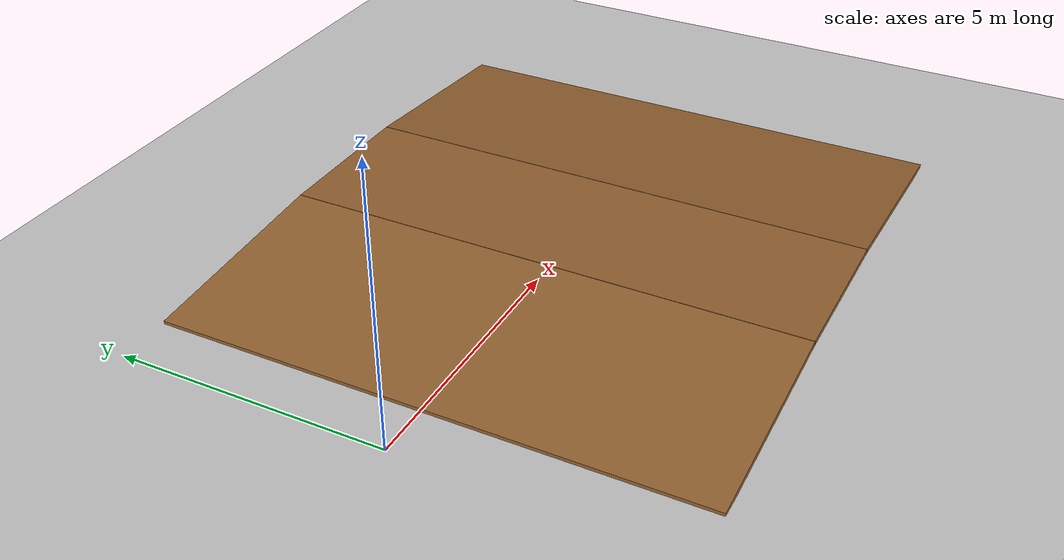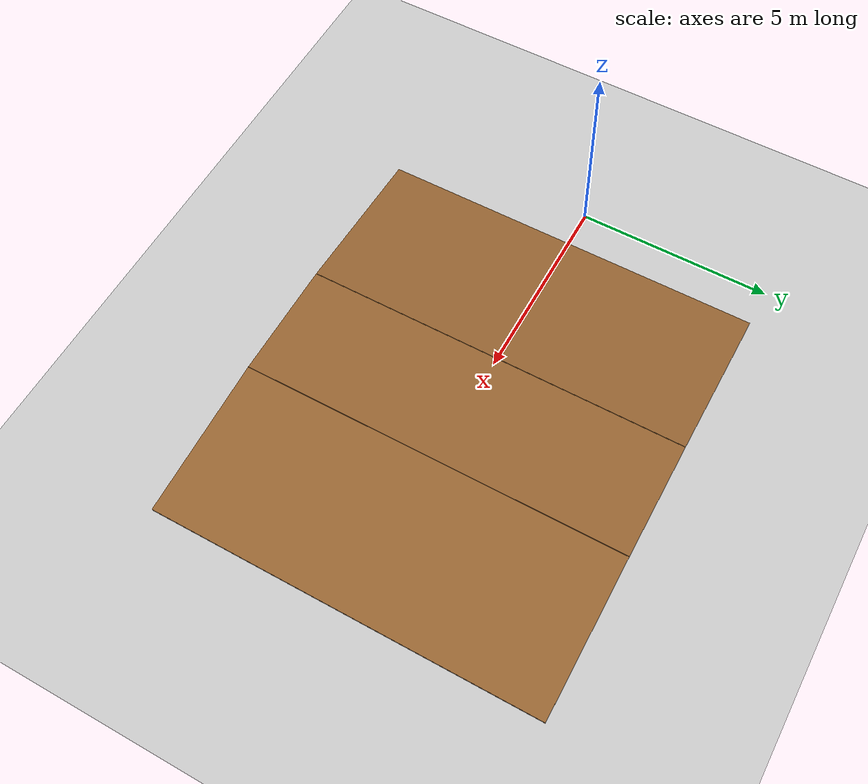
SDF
<?xml version="1.0" ?>
<sdf version="1.8">
  <world name="hilly_world">
    <physics name="1ms" type="ignored">
      <max_step_size>0.001</max_step_size>
      <real_time_factor>1.0</real_time_factor>
    </physics>

    <plugin filename="gz-sim-physics-system" name="gz::sim::systems::Physics"></plugin>
    <plugin filename="gz-sim-user-commands-system" name="gz::sim::systems::UserCommands"></plugin>
    <plugin filename="gz-sim-scene-broadcaster-system" name="gz::sim::systems::SceneBroadcaster"></plugin>
    <plugin filename="gz-sim-sensors-system" name="gz::sim::systems::Sensors">
      <render_engine>ogre2</render_engine>
    </plugin>
    <plugin filename="gz-sim-contact-system" name="gz::sim::systems::Contact"></plugin>

    <scene>
      <ambient>1.0 1.0 1.0 1</ambient>
      <background>0.8 0.9 1.0 1</background>
      <shadows>true</shadows>
    </scene>

    <light type="directional" name="sun">
      <pose>0 0 10 0 0 0</pose>
      <diffuse>0.8 0.8 0.8 1</diffuse>
      <specular>0.2 0.2 0.2 1</specular>
      <cast_shadows>true</cast_shadows>
    </light>

    <model name="ground_plane">
      <static>true</static>
      <link name="link">
        <collision name="collision"><geometry><plane><normal>0 0 1</normal><size>100 100</size></plane></geometry></collision>
        <visual name="visual">
          <geometry><plane><normal>0 0 1</normal><size>100 100</size></plane></geometry>
          <material>
            <ambient>0.8 0.8 0.8 1</ambient>
            <diffuse>0.8 0.8 0.8 1</diffuse>
            <specular>0.1 0.1 0.1 1</specular>
          </material>
        </visual>
      </link>
    </model>

    <model name="ramp_up">
      <static>true</static>
      <pose>3.0 0 0.16 0 -0.08 0</pose>
      <link name="link">
        <collision name="collision"><geometry><box><size>4 10 0.1</size></box></geometry></collision>
        <visual name="visual">
          <geometry><box><size>4 10 0.1</size></box></geometry>
          <material>
            <ambient>0.6 0.4 0.2 1</ambient>
            <diffuse>0.6 0.4 0.2 1</diffuse>
          </material>
        </visual>
      </link>
    </model>

    <model name="hill_top">
      <static>true</static>
      <pose>6.5 0 0.32 0 0 0</pose>
      <link name="link">
        <collision name="collision"><geometry><box><size>3 10 0.1</size></box></geometry></collision>
        <visual name="visual">
          <geometry><box><size>3 10 0.1</size></box></geometry>
          <material>
            <ambient>0.6 0.4 0.2 1</ambient>
            <diffuse>0.6 0.4 0.2 1</diffuse>
          </material>
        </visual>
      </link>
    </model>

    <model name="ramp_down">
      <static>true</static>
      <pose>10.0 0 0.16 0 0.08 0</pose>
      <link name="link">
        <collision name="collision"><geometry><box><size>4 10 0.1</size></box></geometry></collision>
        <visual name="visual">
          <geometry><box><size>4 10 0.1</size></box></geometry>
          <material>
            <ambient>0.6 0.4 0.2 1</ambient>
            <diffuse>0.6 0.4 0.2 1</diffuse>
          </material>
        </visual>
      </link>
    </model>
  </world>
</sdf>
